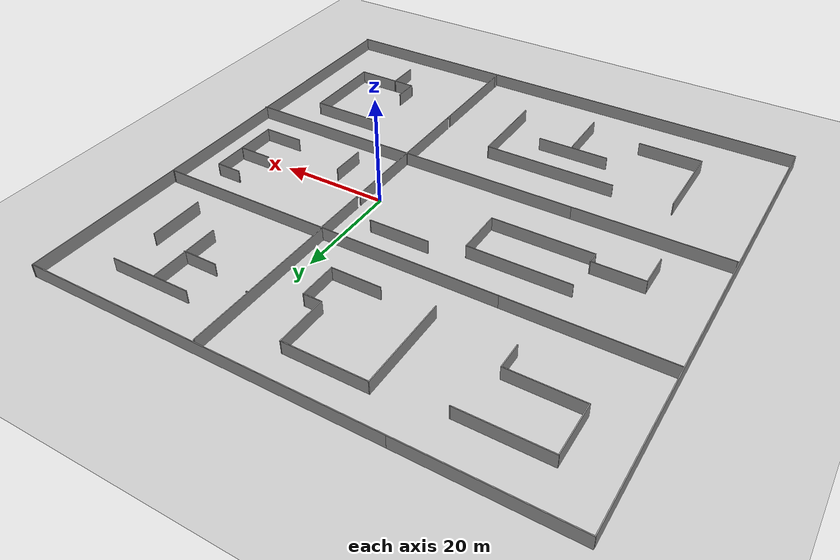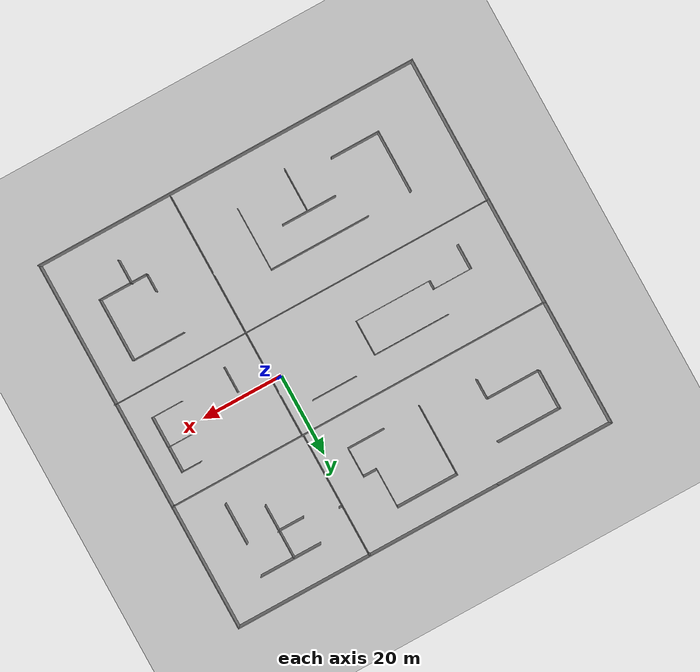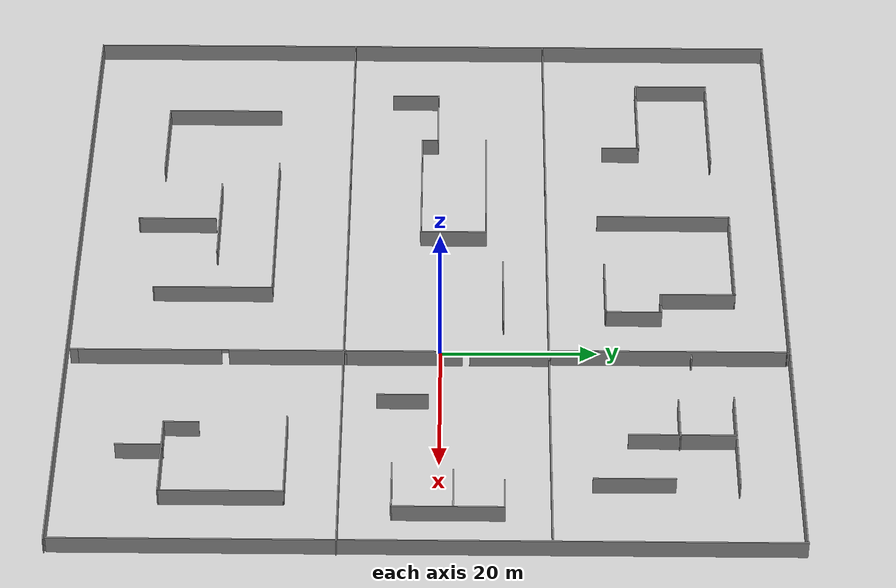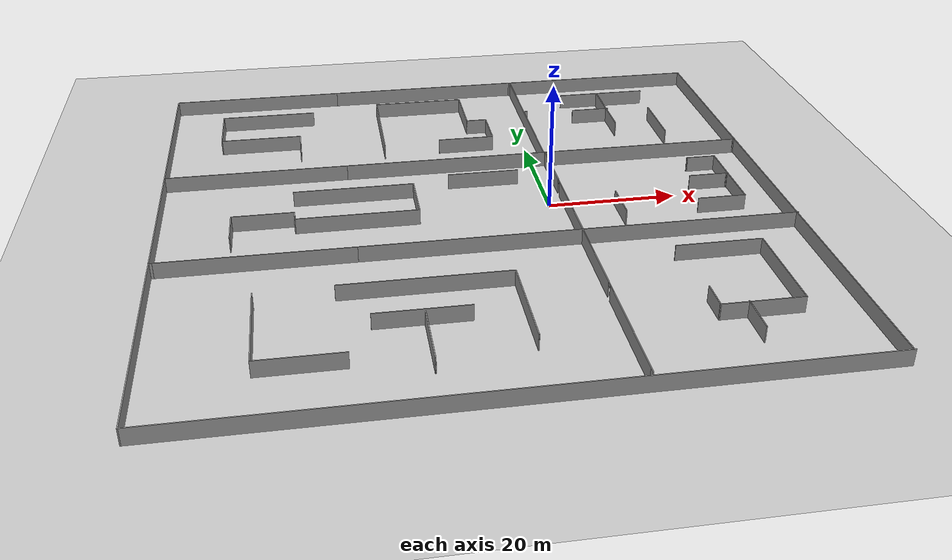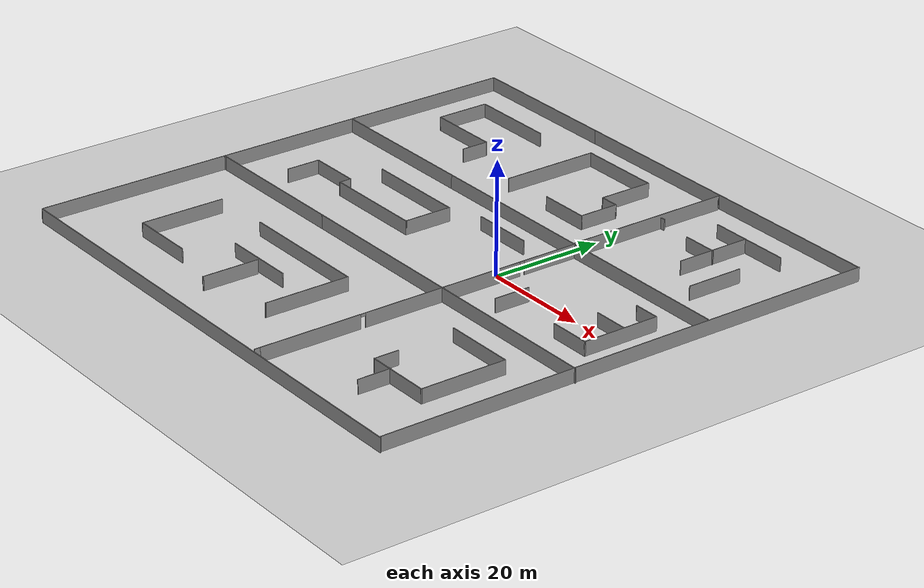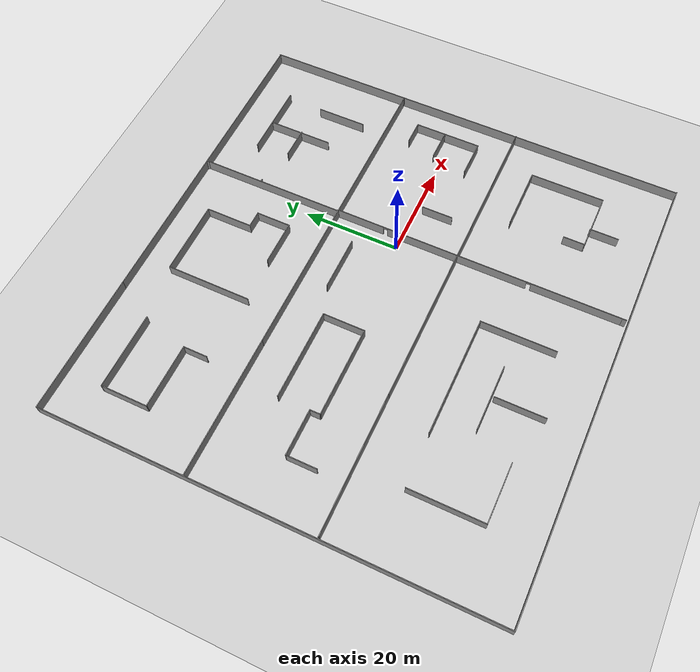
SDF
<sdf version="1.7">
 <world name="default">
  <light name="sun" type="directional">
   <pose>0 0 10 0 -0 0</pose>
   <diffuse>0.8 0.8 0.8 1</diffuse>
   <specular>0.2 0.2 0.2 1</specular>
   <attenuation>
    <range>1000</range>
    <constant>0.9</constant>
    <linear>0.01</linear>
    <quadratic>0.001</quadratic>
   </attenuation>
   <direction>-0.5 0.1 -0.9</direction>
   <spot><inner_angle>0</inner_angle><outer_angle>0</outer_angle><falloff>0</falloff></spot>
  </light>
  <model name="ground_plane">
   <static>1</static>
   <link name="link">
    <collision name="collision">
     <geometry><plane><normal>0 0 1</normal><size>100 100</size></plane></geometry>
     <surface>
      <contact><collide_bitmask>65535</collide_bitmask></contact>
      <friction><ode><mu>100</mu><mu2>50</mu2></ode></friction>
     </surface>
    </collision>
    <visual name="visual">
     <cast_shadows>0</cast_shadows>
     <geometry><plane><normal>0 0 1</normal><size>100 100</size></plane></geometry>
     <material>
      <script><uri>file://media/materials/scripts/gazebo.material</uri><name>Gazebo/Grey</name></script>
     </material>
    </visual>
   </link>
  </model>
  <gravity>0 0 -9.8</gravity>
  <magnetic_field>6e-06 2.3e-05 -4.2e-05</magnetic_field>
  <atmosphere type="adiabatic"/>
  <physics type="ode">
   <max_step_size>0.001</max_step_size>
   <real_time_factor>1</real_time_factor>
   <real_time_update_rate>1000</real_time_update_rate>
  </physics>
  <scene><ambient>0.4 0.4 0.4 1</ambient><background>0.7 0.7 0.7 1</background><shadows>1</shadows></scene>
  <spherical_coordinates>
   <surface_model>EARTH_WGS84</surface_model>
   <latitude_deg>0</latitude_deg>
   <longitude_deg>0</longitude_deg>
   <elevation>0</elevation>
   <heading_deg>0</heading_deg>
  </spherical_coordinates>
  <model name="map.world">
   <pose>-12.0234 -1.49777 0 0 -0 0</pose>
   <link name="Door_2">
    <collision name="Door_2_Collision">
     <geometry><box><size>0.9 0.17 2</size></box></geometry>
     <pose>0 0 1 0 -0 0</pose>
    </collision>
    <visual name="Door_2_Visual">
     <pose>0 0 1 0 -0 0</pose>
     <geometry><box><size>0.9 0.17 2</size></box></geometry>
     <material>
      <script><uri>file://media/materials/scripts/gazebo.material</uri><name>Gazebo/Grey</name></script>
     </material>
    </visual>
    <pose>14.404 33.3614 0 0 -0 0</pose>
   </link>
   <link name="Wall_101">
    <collision name="Wall_101_Collision">
     <geometry><box><size>0.25 0.15 2.5</size></box></geometry>
     <pose>0 0 1.25 0 -0 0</pose>
    </collision>
    <visual name="Wall_101_Visual">
     <pose>0 0 1.25 0 -0 0</pose>
     <geometry><box><size>0.25 0.15 2.5</size></box></geometry>
     <material>
      <script><uri>file://media/materials/scripts/gazebo.material</uri><name>Gazebo/Grey</name></script>
      <ambient>1 1 1 1</ambient>
     </material>
     <meta><layer>0</layer></meta>
    </visual>
    <pose>41.2439 3.27266 0 0 -0 0.261799</pose>
   </link>
   <link name="Wall_102">
    <collision name="Wall_102_Collision">
     <geometry><box><size>6.25 0.15 2.5</size></box></geometry>
     <pose>0 0 1.25 0 -0 0</pose>
    </collision>
    <visual name="Wall_102_Visual">
     <pose>0 0 1.25 0 -0 0</pose>
     <geometry><box><size>6.25 0.15 2.5</size></box></geometry>
     <material>
      <script><uri>file://media/materials/scripts/gazebo.material</uri><name>Gazebo/Grey</name></script>
      <ambient>1 1 1 1</ambient>
     </material>
     <meta><layer>0</layer></meta>
    </visual>
    <pose>38.2422 3.2856 0 0 -0 3.14159</pose>
   </link>
   <link name="Wall_104">
    <collision name="Wall_104_Collision">
     <geometry><box><size>15.25 0.15 2.5</size></box></geometry>
     <pose>0 0 1.25 0 -0 0</pose>
    </collision>
    <visual name="Wall_104_Visual">
     <pose>0 0 1.25 0 -0 0</pose>
     <geometry><box><size>15.25 0.15 2.5</size></box></geometry>
     <material>
      <script><uri>file://media/materials/scripts/gazebo.material</uri><name>Gazebo/Grey</name></script>
      <ambient>1 1 1 1</ambient>
     </material>
     <meta><layer>0</layer></meta>
    </visual>
    <pose>-33.1146 -28.1135 0 0 -0 -1.5708</pose>
   </link>
   <link name="Wall_105">
    <collision name="Wall_105_Collision">
     <geometry><box><size>12 0.15 2.5</size></box></geometry>
     <pose>0 0 1.25 0 -0 0</pose>
    </collision>
    <visual name="Wall_105_Visual">
     <pose>0 0 1.25 0 -0 0</pose>
     <geometry><box><size>12 0.15 2.5</size></box></geometry>
     <material>
      <script><uri>file://media/materials/scripts/gazebo.material</uri><name>Gazebo/Grey</name></script>
      <ambient>1 1 1 1</ambient>
     </material>
     <meta><layer>0</layer></meta>
    </visual>
    <pose>-27.1896 -35.6635 0 0 -0 0</pose>
   </link>
   <link name="Wall_107">
    <collision name="Wall_107_Collision">
     <geometry><box><size>24.75 0.15 2.5</size></box></geometry>
     <pose>0 0 1.25 0 -0 0</pose>
    </collision>
    <visual name="Wall_107_Visual">
     <pose>0 0 1.25 0 -0 0</pose>
     <geometry><box><size>24.75 0.15 2.5</size></box></geometry>
     <material>
      <script><uri>file://media/materials/scripts/gazebo.material</uri><name>Gazebo/Grey</name></script>
      <ambient>1 1 1 1</ambient>
     </material>
     <meta><layer>0</layer></meta>
    </visual>
    <pose>-9.83622 -20.314 0 0 -0 0</pose>
   </link>
   <link name="Wall_108">
    <collision name="Wall_108_Collision">
     <geometry><box><size>15.5 0.15 2.5</size></box></geometry>
     <pose>0 0 1.25 0 -0 0</pose>
    </collision>
    <visual name="Wall_108_Visual">
     <pose>0 0 1.25 0 -0 0</pose>
     <geometry><box><size>15.5 0.15 2.5</size></box></geometry>
     <material>
      <script><uri>file://media/materials/scripts/gazebo.material</uri><name>Gazebo/Grey</name></script>
      <ambient>1 1 1 1</ambient>
     </material>
     <meta><layer>0</layer></meta>
    </visual>
    <pose>2.46378 -27.989 0 0 -0 -1.5708</pose>
   </link>
   <link name="Wall_109">
    <collision name="Wall_109_Collision">
     <geometry><box><size>0.16 0.15 2.5</size></box></geometry>
     <pose>0 0 1.25 0 -0 0</pose>
    </collision>
    <visual name="Wall_109_Visual">
     <pose>0 0 1.25 0 -0 0</pose>
     <geometry><box><size>0.16 0.15 2.5</size></box></geometry>
     <material>
      <script><uri>file://media/materials/scripts/gazebo.material</uri><name>Gazebo/Grey</name></script>
      <ambient>1 1 1 1</ambient>
     </material>
     <meta><layer>0</layer></meta>
    </visual>
    <pose>2.46878 -35.664 0 0 -0 0</pose>
   </link>
   <link name="Wall_111">
    <collision name="Wall_111_Collision">
     <geometry><box><size>13.5 0.15 2.5</size></box></geometry>
     <pose>0 0 1.25 0 -0 0</pose>
    </collision>
    <visual name="Wall_111_Visual">
     <pose>0 0 1.25 0 -0 0</pose>
     <geometry><box><size>13.5 0.15 2.5</size></box></geometry>
     <material>
      <script><uri>file://media/materials/scripts/gazebo.material</uri><name>Gazebo/Grey</name></script>
      <ambient>1 1 1 1</ambient>
     </material>
     <meta><layer>0</layer></meta>
    </visual>
    <pose>-11.2196 -27.7993 0 0 -0 0</pose>
   </link>
   <link name="Wall_113">
    <collision name="Wall_113_Collision">
     <geometry><box><size>10.25 0.15 2.5</size></box></geometry>
     <pose>0 0 1.25 0 -0 0</pose>
    </collision>
    <visual name="Wall_113_Visual">
     <pose>0 0 1.25 0 -0 0</pose>
     <geometry><box><size>10.25 0.15 2.5</size></box></geometry>
     <material>
      <script><uri>file://media/materials/scripts/gazebo.material</uri><name>Gazebo/Grey</name></script>
      <ambient>1 1 1 1</ambient>
     </material>
     <meta><layer>0</layer></meta>
    </visual>
    <pose>-10.9083 -33.3483 0 0 -0 -1.5708</pose>
   </link>
   <link name="Wall_114">
    <collision name="Wall_114_Collision">
     <geometry><box><size>0.16 0.15 2.5</size></box></geometry>
     <pose>0 0 1.25 0 -0 0</pose>
    </collision>
    <visual name="Wall_114_Visual">
     <pose>0 0 1.25 0 -0 0</pose>
     <geometry><box><size>0.16 0.15 2.5</size></box></geometry>
     <material>
      <script><uri>file://media/materials/scripts/gazebo.material</uri><name>Gazebo/Grey</name></script>
      <ambient>1 1 1 1</ambient>
     </material>
     <meta><layer>0</layer></meta>
    </visual>
    <pose>-10.9033 -38.3983 0 0 -0 0</pose>
   </link>
   <link name="Wall_118">
    <collision name="Wall_118_Collision">
     <geometry><box><size>13 0.15 2.5</size></box></geometry>
     <pose>0 0 1.25 0 -0 0</pose>
    </collision>
    <visual name="Wall_118_Visual">
     <pose>0 0 1.25 0 -0 0</pose>
     <geometry><box><size>13 0.15 2.5</size></box></geometry>
     <material>
      <script><uri>file://media/materials/scripts/gazebo.material</uri><name>Gazebo/Grey</name></script>
      <ambient>1 1 1 1</ambient>
     </material>
     <meta><layer>0</layer></meta>
    </visual>
    <pose>32.589 -17.4019 0 0 -0 0</pose>
   </link>
   <link name="Wall_119">
    <collision name="Wall_119_Collision">
     <geometry><box><size>15.5 0.15 2.5</size></box></geometry>
     <pose>0 0 1.25 0 -0 0</pose>
    </collision>
    <visual name="Wall_119_Visual">
     <pose>0 0 1.25 0 -0 0</pose>
     <geometry><box><size>15.5 0.15 2.5</size></box></geometry>
     <material>
      <script><uri>file://media/materials/scripts/gazebo.material</uri><name>Gazebo/Grey</name></script>
      <ambient>1 1 1 1</ambient>
     </material>
     <meta><layer>0</layer></meta>
    </visual>
    <pose>39.014 -25.0769 0 0 -0 -1.5708</pose>
   </link>
   <link name="Wall_12">
    <collision name="Wall_12_Collision">
     <geometry><box><size>65.5 0.15 2.5</size></box></geometry>
     <pose>0 0 1.25 0 -0 0</pose>
    </collision>
    <visual name="Wall_12_Visual">
     <pose>0 0 1.25 0 -0 0</pose>
     <geometry><box><size>65.5 0.15 2.5</size></box></geometry>
     <material>
      <script><uri>file://media/materials/scripts/gazebo.material</uri><name>Gazebo/Grey</name></script>
      <ambient>1 1 1 1</ambient>
     </material>
     <meta><layer>0</layer></meta>
    </visual>
    <pose>14.1184 15.3178 0 0 -0 0</pose>
   </link>
   <link name="Wall_120">
    <collision name="Wall_120_Collision">
     <geometry><box><size>12 0.15 2.5</size></box></geometry>
     <pose>0 0 1.25 0 -0 0</pose>
    </collision>
    <visual name="Wall_120_Visual">
     <pose>0 0 1.25 0 -0 0</pose>
     <geometry><box><size>12 0.15 2.5</size></box></geometry>
     <material>
      <script><uri>file://media/materials/scripts/gazebo.material</uri><name>Gazebo/Grey</name></script>
      <ambient>1 1 1 1</ambient>
     </material>
     <meta><layer>0</layer></meta>
    </visual>
    <pose>33.089 -32.7519 0 0 -0 3.14159</pose>
   </link>
   <link name="Wall_121">
    <collision name="Wall_121_Collision">
     <geometry><box><size>0.16 0.15 2.5</size></box></geometry>
     <pose>0 0 1.25 0 -0 0</pose>
    </collision>
    <visual name="Wall_121_Visual">
     <pose>0 0 1.25 0 -0 0</pose>
     <geometry><box><size>0.16 0.15 2.5</size></box></geometry>
     <material>
      <script><uri>file://media/materials/scripts/gazebo.material</uri><name>Gazebo/Grey</name></script>
      <ambient>1 1 1 1</ambient>
     </material>
     <meta><layer>0</layer></meta>
    </visual>
    <pose>27.169 -32.7519 0 0 -0 0</pose>
   </link>
   <link name="Wall_122">
    <collision name="Wall_122_Collision">
     <geometry><box><size>4.5 0.15 2.5</size></box></geometry>
     <pose>0 0 1.25 0 -0 0</pose>
    </collision>
    <visual name="Wall_122_Visual">
     <pose>0 0 1.25 0 -0 0</pose>
     <geometry><box><size>4.5 0.15 2.5</size></box></geometry>
     <material>
      <script><uri>file://media/materials/scripts/gazebo.material</uri><name>Gazebo/Grey</name></script>
      <ambient>1 1 1 1</ambient>
     </material>
     <meta><layer>0</layer></meta>
    </visual>
    <pose>27.174 -30.5769 0 0 -0 1.5708</pose>
   </link>
   <link name="Wall_124">
    <collision name="Wall_124_Collision">
     <geometry><box><size>6 0.15 2.5</size></box></geometry>
     <pose>0 0 1.25 0 -0 0</pose>
    </collision>
    <visual name="Wall_124_Visual">
     <pose>0 0 1.25 0 -0 0</pose>
     <geometry><box><size>6 0.15 2.5</size></box></geometry>
     <material>
      <script><uri>file://media/materials/scripts/gazebo.material</uri><name>Gazebo/Grey</name></script>
      <ambient>1 1 1 1</ambient>
     </material>
     <meta><layer>0</layer></meta>
    </visual>
    <pose>31.1542 -35.5469 0 0 -0 -1.5708</pose>
   </link>
   <link name="Wall_13">
    <collision name="Wall_13_Collision">
     <geometry><box><size>0.16 0.15 2.5</size></box></geometry>
     <pose>0 0 1.25 0 -0 0</pose>
    </collision>
    <visual name="Wall_13_Visual">
     <pose>0 0 1.25 0 -0 0</pose>
     <geometry><box><size>0.16 0.15 2.5</size></box></geometry>
     <material>
      <script><uri>file://media/materials/scripts/gazebo.material</uri><name>Gazebo/Grey</name></script>
      <ambient>1 1 1 1</ambient>
     </material>
     <meta><layer>0</layer></meta>
    </visual>
    <pose>46.7984 15.3178 0 0 -0 0</pose>
   </link>
   <link name="Wall_14">
    <collision name="Wall_14_Collision">
     <geometry><box><size>0.25 0.15 2.5</size></box></geometry>
     <pose>0 0 1.25 0 -0 0</pose>
    </collision>
    <visual name="Wall_14_Visual">
     <pose>0 0 1.25 0 -0 0</pose>
     <geometry><box><size>0.25 0.15 2.5</size></box></geometry>
     <material>
      <script><uri>file://media/materials/scripts/gazebo.material</uri><name>Gazebo/Grey</name></script>
      <ambient>1 1 1 1</ambient>
     </material>
     <meta><layer>0</layer></meta>
    </visual>
    <pose>46.8517 15.3048 0 0 -0 -0.261799</pose>
   </link>
   <link name="Wall_18">
    <pose>14.2196 2.50651 0 0 -0 1.5708</pose>
    <visual name="Wall_18_Visual_0">
     <pose>-5.58307 0 1.25 0 -0 0</pose>
     <geometry><box><size>14.8339 0.15 2.5</size></box></geometry>
     <material>
      <script><uri>file://media/materials/scripts/gazebo.material</uri><name>Gazebo/Grey</name></script>
      <ambient>1 1 1 1</ambient>
     </material>
     <meta><layer>0</layer></meta>
    </visual>
    <collision name="Wall_18_Collision_0">
     <geometry><box><size>14.8339 0.15 2.5</size></box></geometry>
     <pose>-5.58307 0 1.25 0 -0 0</pose>
    </collision>
    <visual name="Wall_18_Visual_1">
     <pose>7.86693 0 1.25 0 -0 0</pose>
     <geometry><box><size>10.2661 0.15 2.5</size></box></geometry>
     <material>
      <script><uri>file://media/materials/scripts/gazebo.material</uri><name>Gazebo/Grey</name></script>
      <ambient>1 1 1 1</ambient>
     </material>
     <meta><layer>0</layer></meta>
    </visual>
    <collision name="Wall_18_Collision_1">
     <geometry><box><size>10.2661 0.15 2.5</size></box></geometry>
     <pose>7.86693 0 1.25 0 -0 0</pose>
    </collision>
    <visual name="Wall_18_Visual_2">
     <pose>2.28386 0 2.25 0 -0 0</pose>
     <geometry><box><size>0.9 0.15 0.5</size></box></geometry>
     <material>
      <script><uri>file://media/materials/scripts/gazebo.material</uri><name>Gazebo/Grey</name></script>
      <ambient>1 1 1 1</ambient>
     </material>
     <meta><layer>0</layer></meta>
    </visual>
    <collision name="Wall_18_Collision_2">
     <geometry><box><size>0.9 0.15 0.5</size></box></geometry>
     <pose>2.28386 0 2.25 0 -0 0</pose>
    </collision>
   </link>
   <link name="Wall_29">
    <pose>14.2196 -27.4685 0 0 -0 -1.5708</pose>
    <visual name="Wall_29_Visual_0">
     <pose>-9.65738 0 1.25 0 -0 0</pose>
     <geometry><box><size>14.9352 0.15 2.5</size></box></geometry>
     <material>
      <script><uri>file://media/materials/scripts/gazebo.material</uri><name>Gazebo/Grey</name></script>
      <ambient>1 1 1 1</ambient>
     </material>
     <meta><layer>0</layer></meta>
    </visual>
    <collision name="Wall_29_Collision_0">
     <geometry><box><size>14.9352 0.15 2.5</size></box></geometry>
     <pose>-9.65738 0 1.25 0 -0 0</pose>
    </collision>
    <visual name="Wall_29_Visual_1">
     <pose>7.91762 0 1.25 0 -0 0</pose>
     <geometry><box><size>18.4148 0.15 2.5</size></box></geometry>
     <material>
      <script><uri>file://media/materials/scripts/gazebo.material</uri><name>Gazebo/Grey</name></script>
      <ambient>1 1 1 1</ambient>
     </material>
     <meta><layer>0</layer></meta>
    </visual>
    <collision name="Wall_29_Collision_1">
     <geometry><box><size>18.4148 0.15 2.5</size></box></geometry>
     <pose>7.91762 0 1.25 0 -0 0</pose>
    </collision>
    <visual name="Wall_29_Visual_2">
     <pose>-1.73977 0 2.25 0 -0 0</pose>
     <geometry><box><size>0.9 0.15 0.5</size></box></geometry>
     <material>
      <script><uri>file://media/materials/scripts/gazebo.material</uri><name>Gazebo/Grey</name></script>
      <ambient>1 1 1 1</ambient>
     </material>
     <meta><layer>0</layer></meta>
    </visual>
    <collision name="Wall_29_Collision_2">
     <geometry><box><size>0.9 0.15 0.5</size></box></geometry>
     <pose>-1.73977 0 2.25 0 -0 0</pose>
    </collision>
   </link>
   <link name="Wall_30">
    <collision name="Wall_30_Collision">
     <geometry><box><size>1 0.15 2.5</size></box></geometry>
     <pose>0 0 1.25 0 -0 0</pose>
    </collision>
    <visual name="Wall_30_Visual">
     <pose>0 0 1.25 0 -0 0</pose>
     <geometry><box><size>1 0.15 2.5</size></box></geometry>
     <material>
      <script><uri>file://media/materials/scripts/gazebo.material</uri><name>Gazebo/Grey</name></script>
      <ambient>1 1 1 1</ambient>
     </material>
     <meta><layer>0</layer></meta>
    </visual>
    <pose>14.2196 -44.9435 0 0 -0 -1.5708</pose>
   </link>
   <link name="Wall_40">
    <collision name="Wall_40_Collision">
     <geometry><box><size>65.75 0.15 2.5</size></box></geometry>
     <pose>0 0 1.25 0 -0 0</pose>
    </collision>
    <visual name="Wall_40_Visual">
     <pose>0 0 1.25 0 -0 0</pose>
     <geometry><box><size>65.75 0.15 2.5</size></box></geometry>
     <material>
      <script><uri>file://media/materials/scripts/gazebo.material</uri><name>Gazebo/Grey</name></script>
      <ambient>1 1 1 1</ambient>
     </material>
     <meta><layer>0</layer></meta>
    </visual>
    <pose>14.1 45.8919 0 0 -0 3.14159</pose>
   </link>
   <link name="Wall_44">
    <collision name="Wall_44_Collision">
     <geometry><box><size>30 0.15 2.5</size></box></geometry>
     <pose>0 0 1.25 0 -0 0</pose>
    </collision>
    <visual name="Wall_44_Visual">
     <pose>0 0 1.25 0 -0 0</pose>
     <geometry><box><size>30 0.15 2.5</size></box></geometry>
     <material>
      <script><uri>file://media/materials/scripts/gazebo.material</uri><name>Gazebo/Grey</name></script>
      <ambient>1 1 1 1</ambient>
     </material>
     <meta><layer>0</layer></meta>
    </visual>
    <pose>13.9711 30.5377 0 0 -0 1.5708</pose>
   </link>
   <link name="Wall_45">
    <collision name="Wall_45_Collision">
     <geometry><box><size>0.5 0.15 2.5</size></box></geometry>
     <pose>0 0 1.25 0 -0 0</pose>
    </collision>
    <visual name="Wall_45_Visual">
     <pose>0 0 1.25 0 -0 0</pose>
     <geometry><box><size>0.5 0.15 2.5</size></box></geometry>
     <material>
      <script><uri>file://media/materials/scripts/gazebo.material</uri><name>Gazebo/Grey</name></script>
      <ambient>1 1 1 1</ambient>
     </material>
     <meta><layer>0</layer></meta>
    </visual>
    <pose>13.8836 45.6143 0 0 -0 2.0944</pose>
   </link>
   <link name="Wall_47">
    <collision name="Wall_47_Collision">
     <geometry><box><size>91.75 0.15 2.5</size></box></geometry>
     <pose>0 0 1.25 0 -0 0</pose>
    </collision>
    <visual name="Wall_47_Visual">
     <pose>0 0 1.25 0 -0 0</pose>
     <geometry><box><size>91.75 0.15 2.5</size></box></geometry>
     <material>
      <script><uri>file://media/materials/scripts/gazebo.material</uri><name>Gazebo/Grey</name></script>
      <ambient>1 1 1 1</ambient>
     </material>
     <meta><layer>0</layer></meta>
    </visual>
    <pose>47.0875 0.158112 0 0 -0 1.5708</pose>
   </link>
   <link name="Wall_49">
    <collision name="Wall_49_Collision">
     <geometry><box><size>17.5 0.15 2.5</size></box></geometry>
     <pose>0 0 1.25 0 -0 0</pose>
    </collision>
    <visual name="Wall_49_Visual">
     <pose>0 0 1.25 0 -0 0</pose>
     <geometry><box><size>17.5 0.15 2.5</size></box></geometry>
     <material>
      <script><uri>file://media/materials/scripts/gazebo.material</uri><name>Gazebo/Grey</name></script>
      <ambient>1 1 1 1</ambient>
     </material>
     <meta><layer>0</layer></meta>
    </visual>
    <pose>-11.7862 30.7812 0 0 -0 1.5708</pose>
   </link>
   <link name="Wall_5">
    <collision name="Wall_5_Collision">
     <geometry><box><size>66 0.15 2.5</size></box></geometry>
     <pose>0 0 1.25 0 -0 0</pose>
    </collision>
    <visual name="Wall_5_Visual">
     <pose>0 0 1.25 0 -0 0</pose>
     <geometry><box><size>66 0.15 2.5</size></box></geometry>
     <material>
      <script><uri>file://media/materials/scripts/gazebo.material</uri><name>Gazebo/Grey</name></script>
      <ambient>1 1 1 1</ambient>
     </material>
     <meta><layer>0</layer></meta>
    </visual>
    <pose>14.3684 -10.7322 0 0 -0 3.14159</pose>
   </link>
   <link name="Wall_50">
    <collision name="Wall_50_Collision">
     <geometry><box><size>15.25 0.15 2.5</size></box></geometry>
     <pose>0 0 1.25 0 -0 0</pose>
    </collision>
    <visual name="Wall_50_Visual">
     <pose>0 0 1.25 0 -0 0</pose>
     <geometry><box><size>15.25 0.15 2.5</size></box></geometry>
     <material>
      <script><uri>file://media/materials/scripts/gazebo.material</uri><name>Gazebo/Grey</name></script>
      <ambient>1 1 1 1</ambient>
     </material>
     <meta><layer>0</layer></meta>
    </visual>
    <pose>-4.23616 39.4562 0 0 -0 0</pose>
   </link>
   <link name="Wall_51">
    <collision name="Wall_51_Collision">
     <geometry><box><size>9.75 0.15 2.5</size></box></geometry>
     <pose>0 0 1.25 0 -0 0</pose>
    </collision>
    <visual name="Wall_51_Visual">
     <pose>0 0 1.25 0 -0 0</pose>
     <geometry><box><size>9.75 0.15 2.5</size></box></geometry>
     <material>
      <script><uri>file://media/materials/scripts/gazebo.material</uri><name>Gazebo/Grey</name></script>
      <ambient>1 1 1 1</ambient>
     </material>
     <meta><layer>0</layer></meta>
    </visual>
    <pose>3.31384 34.6562 0 0 -0 -1.5708</pose>
   </link>
   <link name="Wall_52">
    <collision name="Wall_52_Collision">
     <geometry><box><size>3.5 0.15 2.5</size></box></geometry>
     <pose>0 0 1.25 0 -0 0</pose>
    </collision>
    <visual name="Wall_52_Visual">
     <pose>0 0 1.25 0 -0 0</pose>
     <geometry><box><size>3.5 0.15 2.5</size></box></geometry>
     <material>
      <script><uri>file://media/materials/scripts/gazebo.material</uri><name>Gazebo/Grey</name></script>
      <ambient>1 1 1 1</ambient>
     </material>
     <meta><layer>0</layer></meta>
    </visual>
    <pose>4.98884 29.8562 0 0 -0 0</pose>
   </link>
   <link name="Wall_53">
    <collision name="Wall_53_Collision">
     <geometry><box><size>7.25 0.15 2.5</size></box></geometry>
     <pose>0 0 1.25 0 -0 0</pose>
    </collision>
    <visual name="Wall_53_Visual">
     <pose>0 0 1.25 0 -0 0</pose>
     <geometry><box><size>7.25 0.15 2.5</size></box></geometry>
     <material>
      <script><uri>file://media/materials/scripts/gazebo.material</uri><name>Gazebo/Grey</name></script>
      <ambient>1 1 1 1</ambient>
     </material>
     <meta><layer>0</layer></meta>
    </visual>
    <pose>6.66384 26.3062 0 0 -0 -1.5708</pose>
   </link>
   <link name="Wall_54">
    <collision name="Wall_54_Collision">
     <geometry><box><size>9.25 0.15 2.5</size></box></geometry>
     <pose>0 0 1.25 0 -0 0</pose>
    </collision>
    <visual name="Wall_54_Visual">
     <pose>0 0 1.25 0 -0 0</pose>
     <geometry><box><size>9.25 0.15 2.5</size></box></geometry>
     <material>
      <script><uri>file://media/materials/scripts/gazebo.material</uri><name>Gazebo/Grey</name></script>
      <ambient>1 1 1 1</ambient>
     </material>
     <meta><layer>0</layer></meta>
    </visual>
    <pose>2.11384 22.7562 0 0 -0 3.14159</pose>
   </link>
   <link name="Wall_56">
    <collision name="Wall_56_Collision">
     <geometry><box><size>15.25 0.15 2.5</size></box></geometry>
     <pose>0 0 1.25 0 -0 0</pose>
    </collision>
    <visual name="Wall_56_Visual">
     <pose>0 0 1.25 0 -0 0</pose>
     <geometry><box><size>15.25 0.15 2.5</size></box></geometry>
     <material>
      <script><uri>file://media/materials/scripts/gazebo.material</uri><name>Gazebo/Grey</name></script>
      <ambient>1 1 1 1</ambient>
     </material>
     <meta><layer>0</layer></meta>
    </visual>
    <pose>29.7461 38.3397 0 0 -0 0</pose>
   </link>
   <link name="Wall_58">
    <collision name="Wall_58_Collision">
     <geometry><box><size>13.5 0.15 2.5</size></box></geometry>
     <pose>0 0 1.25 0 -0 0</pose>
    </collision>
    <visual name="Wall_58_Visual">
     <pose>0 0 1.25 0 -0 0</pose>
     <geometry><box><size>13.5 0.15 2.5</size></box></geometry>
     <material>
      <script><uri>file://media/materials/scripts/gazebo.material</uri><name>Gazebo/Grey</name></script>
      <ambient>1 1 1 1</ambient>
     </material>
     <meta><layer>0</layer></meta>
    </visual>
    <pose>28.906 31.6647 0 0 -0 -1.5708</pose>
   </link>
   <link name="Wall_60">
    <collision name="Wall_60_Collision">
     <geometry><box><size>6.5 0.15 2.5</size></box></geometry>
     <pose>0 0 1.25 0 -0 0</pose>
    </collision>
    <visual name="Wall_60_Visual">
     <pose>0 0 1.25 0 -0 0</pose>
     <geometry><box><size>6.5 0.15 2.5</size></box></geometry>
     <material>
      <script><uri>file://media/materials/scripts/gazebo.material</uri><name>Gazebo/Grey</name></script>
      <ambient>1 1 1 1</ambient>
     </material>
     <meta><layer>0</layer></meta>
    </visual>
    <pose>25.9416 31.3713 0 0 -0 0</pose>
   </link>
   <link name="Wall_62">
    <collision name="Wall_62_Collision">
     <geometry><box><size>10.25 0.15 2.5</size></box></geometry>
     <pose>0 0 1.25 0 -0 0</pose>
    </collision>
    <visual name="Wall_62_Visual">
     <pose>0 0 1.25 0 -0 0</pose>
     <geometry><box><size>10.25 0.15 2.5</size></box></geometry>
     <material>
      <script><uri>file://media/materials/scripts/gazebo.material</uri><name>Gazebo/Grey</name></script>
      <ambient>1 1 1 1</ambient>
     </material>
     <meta><layer>0</layer></meta>
    </visual>
    <pose>36.5067 25.4626 0 0 -0 -1.5708</pose>
   </link>
   <link name="Wall_66">
    <collision name="Wall_66_Collision">
     <geometry><box><size>28.75 0.15 2.5</size></box></geometry>
     <pose>0 0 1.25 0 -0 0</pose>
    </collision>
    <visual name="Wall_66_Visual">
     <pose>0 0 1.25 0 -0 0</pose>
     <geometry><box><size>28.75 0.15 2.5</size></box></geometry>
     <material>
      <script><uri>file://media/materials/scripts/gazebo.material</uri><name>Gazebo/Grey</name></script>
      <ambient>1 1 1 1</ambient>
     </material>
     <meta><layer>0</layer></meta>
    </visual>
    <pose>-33 45.8919 0 0 -0 3.14159</pose>
   </link>
   <link name="Wall_67">
    <collision name="Wall_67_Collision">
     <geometry><box><size>92 0.15 2.5</size></box></geometry>
     <pose>0 0 1.25 0 -0 0</pose>
    </collision>
    <visual name="Wall_67_Visual">
     <pose>0 0 1.25 0 -0 0</pose>
     <geometry><box><size>92 0.15 2.5</size></box></geometry>
     <material>
      <script><uri>file://media/materials/scripts/gazebo.material</uri><name>Gazebo/Grey</name></script>
      <ambient>1 1 1 1</ambient>
     </material>
     <meta><layer>0</layer></meta>
    </visual>
    <pose>-47.3 -0.033115 0 0 -0 -1.5708</pose>
   </link>
   <link name="Wall_68">
    <collision name="Wall_68_Collision">
     <geometry><box><size>94.75 0.15 2.5</size></box></geometry>
     <pose>0 0 1.25 0 -0 0</pose>
    </collision>
    <visual name="Wall_68_Visual">
     <pose>0 0 1.25 0 -0 0</pose>
     <geometry><box><size>94.75 0.15 2.5</size></box></geometry>
     <material>
      <script><uri>file://media/materials/scripts/gazebo.material</uri><name>Gazebo/Grey</name></script>
      <ambient>1 1 1 1</ambient>
     </material>
     <meta><layer>0</layer></meta>
    </visual>
    <pose>2e-06 -45.9581 0 0 -0 0</pose>
   </link>
   <link name="Wall_71">
    <collision name="Wall_71_Collision">
     <geometry><box><size>28.75 0.15 2.5</size></box></geometry>
     <pose>0 0 1.25 0 -0 0</pose>
    </collision>
    <visual name="Wall_71_Visual">
     <pose>0 0 1.25 0 -0 0</pose>
     <geometry><box><size>28.75 0.15 2.5</size></box></geometry>
     <material>
      <script><uri>file://media/materials/scripts/gazebo.material</uri><name>Gazebo/Grey</name></script>
      <ambient>1 1 1 1</ambient>
     </material>
     <meta><layer>0</layer></meta>
    </visual>
    <pose>-32.8566 15.3178 0 0 -0 3.14159</pose>
   </link>
   <link name="Wall_73">
    <collision name="Wall_73_Collision">
     <geometry><box><size>28.5 0.15 2.5</size></box></geometry>
     <pose>0 0 1.25 0 -0 0</pose>
    </collision>
    <visual name="Wall_73_Visual">
     <pose>0 0 1.25 0 -0 0</pose>
     <geometry><box><size>28.5 0.15 2.5</size></box></geometry>
     <material>
      <script><uri>file://media/materials/scripts/gazebo.material</uri><name>Gazebo/Grey</name></script>
      <ambient>1 1 1 1</ambient>
     </material>
     <meta><layer>0</layer></meta>
    </visual>
    <pose>-32.7316 -10.7322 0 0 -0 3.14159</pose>
   </link>
   <link name="Wall_74">
    <collision name="Wall_74_Collision">
     <geometry><box><size>0.5 0.15 2.5</size></box></geometry>
     <pose>0 0 1.25 0 -0 0</pose>
    </collision>
    <visual name="Wall_74_Visual">
     <pose>0 0 1.25 0 -0 0</pose>
     <geometry><box><size>0.5 0.15 2.5</size></box></geometry>
     <material>
      <script><uri>file://media/materials/scripts/gazebo.material</uri><name>Gazebo/Grey</name></script>
      <ambient>1 1 1 1</ambient>
     </material>
     <meta><layer>0</layer></meta>
    </visual>
    <pose>-47.0816 -10.7322 0 0 -0 3.14159</pose>
   </link>
   <link name="Wall_76">
    <collision name="Wall_76_Collision">
     <geometry><box><size>18.75 0.15 2.5</size></box></geometry>
     <pose>0 0 1.25 0 -0 0</pose>
    </collision>
    <visual name="Wall_76_Visual">
     <pose>0 0 1.25 0 -0 0</pose>
     <geometry><box><size>18.75 0.15 2.5</size></box></geometry>
     <material>
      <script><uri>file://media/materials/scripts/gazebo.material</uri><name>Gazebo/Grey</name></script>
      <ambient>1 1 1 1</ambient>
     </material>
     <meta><layer>0</layer></meta>
    </visual>
    <pose>-17.876 7.41367 0 0 -0 0</pose>
   </link>
   <link name="Wall_77">
    <collision name="Wall_77_Collision">
     <geometry><box><size>8.75 0.15 2.5</size></box></geometry>
     <pose>0 0 1.25 0 -0 0</pose>
    </collision>
    <visual name="Wall_77_Visual">
     <pose>0 0 1.25 0 -0 0</pose>
     <geometry><box><size>8.75 0.15 2.5</size></box></geometry>
     <material>
      <script><uri>file://media/materials/scripts/gazebo.material</uri><name>Gazebo/Grey</name></script>
      <ambient>1 1 1 1</ambient>
     </material>
     <meta><layer>0</layer></meta>
    </visual>
    <pose>-8.57597 3.11367 0 0 -0 -1.5708</pose>
   </link>
   <link name="Wall_78">
    <collision name="Wall_78_Collision">
     <geometry><box><size>18.75 0.15 2.5</size></box></geometry>
     <pose>0 0 1.25 0 -0 0</pose>
    </collision>
    <visual name="Wall_78_Visual">
     <pose>0 0 1.25 0 -0 0</pose>
     <geometry><box><size>18.75 0.15 2.5</size></box></geometry>
     <material>
      <script><uri>file://media/materials/scripts/gazebo.material</uri><name>Gazebo/Grey</name></script>
      <ambient>1 1 1 1</ambient>
     </material>
     <meta><layer>0</layer></meta>
    </visual>
    <pose>-17.876 -1.18633 0 0 -0 3.14159</pose>
   </link>
   <link name="Wall_79">
    <collision name="Wall_79_Collision">
     <geometry><box><size>2.25 0.15 2.5</size></box></geometry>
     <pose>0 0 1.25 0 -0 0</pose>
    </collision>
    <visual name="Wall_79_Visual">
     <pose>0 0 1.25 0 -0 0</pose>
     <geometry><box><size>2.25 0.15 2.5</size></box></geometry>
     <material>
      <script><uri>file://media/materials/scripts/gazebo.material</uri><name>Gazebo/Grey</name></script>
      <ambient>1 1 1 1</ambient>
     </material>
     <meta><layer>0</layer></meta>
    </visual>
    <pose>-27.176 -0.136334 0 0 -0 1.5708</pose>
   </link>
   <link name="Wall_80">
    <collision name="Wall_80_Collision">
     <geometry><box><size>9.5 0.15 2.5</size></box></geometry>
     <pose>0 0 1.25 0 -0 0</pose>
    </collision>
    <visual name="Wall_80_Visual">
     <pose>0 0 1.25 0 -0 0</pose>
     <geometry><box><size>9.5 0.15 2.5</size></box></geometry>
     <material>
      <script><uri>file://media/materials/scripts/gazebo.material</uri><name>Gazebo/Grey</name></script>
      <ambient>1 1 1 1</ambient>
     </material>
     <meta><layer>0</layer></meta>
    </visual>
    <pose>-31.851 0.913666 0 0 -0 3.14159</pose>
   </link>
   <link name="Wall_81">
    <collision name="Wall_81_Collision">
     <geometry><box><size>6.25 0.15 2.5</size></box></geometry>
     <pose>0 0 1.25 0 -0 0</pose>
    </collision>
    <visual name="Wall_81_Visual">
     <pose>0 0 1.25 0 -0 0</pose>
     <geometry><box><size>6.25 0.15 2.5</size></box></geometry>
     <material>
      <script><uri>file://media/materials/scripts/gazebo.material</uri><name>Gazebo/Grey</name></script>
      <ambient>1 1 1 1</ambient>
     </material>
     <meta><layer>0</layer></meta>
    </visual>
    <pose>-36.526 -2.13633 0 0 -0 -1.5708</pose>
   </link>
   <link name="Wall_83">
    <collision name="Wall_83_Collision">
     <geometry><box><size>0.16 0.15 2.5</size></box></geometry>
     <pose>0 0 1.25 0 -0 0</pose>
    </collision>
    <visual name="Wall_83_Visual">
     <pose>0 0 1.25 0 -0 0</pose>
     <geometry><box><size>0.16 0.15 2.5</size></box></geometry>
     <material>
      <script><uri>file://media/materials/scripts/gazebo.material</uri><name>Gazebo/Grey</name></script>
      <ambient>1 1 1 1</ambient>
     </material>
     <meta><layer>0</layer></meta>
    </visual>
    <pose>36.8336 9.58331 0 0 -0 0</pose>
   </link>
   <link name="Wall_84">
    <collision name="Wall_84_Collision">
     <geometry><box><size>4.75 0.15 2.5</size></box></geometry>
     <pose>0 0 1.25 0 -0 0</pose>
    </collision>
    <visual name="Wall_84_Visual">
     <pose>0 0 1.25 0 -0 0</pose>
     <geometry><box><size>4.75 0.15 2.5</size></box></geometry>
     <material>
      <script><uri>file://media/materials/scripts/gazebo.material</uri><name>Gazebo/Grey</name></script>
      <ambient>1 1 1 1</ambient>
     </material>
     <meta><layer>0</layer></meta>
    </visual>
    <pose>39.1386 9.58331 0 0 -0 0</pose>
   </link>
   <link name="Wall_85">
    <collision name="Wall_85_Collision">
     <geometry><box><size>14 0.15 2.5</size></box></geometry>
     <pose>0 0 1.25 0 -0 0</pose>
    </collision>
    <visual name="Wall_85_Visual">
     <pose>0 0 1.25 0 -0 0</pose>
     <geometry><box><size>14 0.15 2.5</size></box></geometry>
     <material>
      <script><uri>file://media/materials/scripts/gazebo.material</uri><name>Gazebo/Grey</name></script>
      <ambient>1 1 1 1</ambient>
     </material>
     <meta><layer>0</layer></meta>
    </visual>
    <pose>41.4386 2.65831 0 0 -0 -1.5708</pose>
   </link>
   <link name="Wall_86">
    <collision name="Wall_86_Collision">
     <geometry><box><size>7.5 0.15 2.5</size></box></geometry>
     <pose>0 0 1.25 0 -0 0</pose>
    </collision>
    <visual name="Wall_86_Visual">
     <pose>0 0 1.25 0 -0 0</pose>
     <geometry><box><size>7.5 0.15 2.5</size></box></geometry>
     <material>
      <script><uri>file://media/materials/scripts/gazebo.material</uri><name>Gazebo/Grey</name></script>
      <ambient>1 1 1 1</ambient>
     </material>
     <meta><layer>0</layer></meta>
    </visual>
    <pose>37.7636 -4.26669 0 0 -0 3.14159</pose>
   </link>
   <link name="Wall_88">
    <collision name="Wall_88_Collision">
     <geometry><box><size>0.16 0.15 2.5</size></box></geometry>
     <pose>0 0 1.25 0 -0 0</pose>
    </collision>
    <visual name="Wall_88_Visual">
     <pose>0 0 1.25 0 -0 0</pose>
     <geometry><box><size>0.16 0.15 2.5</size></box></geometry>
     <material>
      <script><uri>file://media/materials/scripts/gazebo.material</uri><name>Gazebo/Grey</name></script>
      <ambient>1 1 1 1</ambient>
     </material>
     <meta><layer>0</layer></meta>
    </visual>
    <pose>8.41123 9.58331 0 0 -0 0</pose>
   </link>
   <link name="Wall_89">
    <collision name="Wall_89_Collision">
     <geometry><box><size>11.25 0.15 2.5</size></box></geometry>
     <pose>0 0 1.25 0 -0 0</pose>
    </collision>
    <visual name="Wall_89_Visual">
     <pose>0 0 1.25 0 -0 0</pose>
     <geometry><box><size>11.25 0.15 2.5</size></box></geometry>
     <material>
      <script><uri>file://media/materials/scripts/gazebo.material</uri><name>Gazebo/Grey</name></script>
      <ambient>1 1 1 1</ambient>
     </material>
     <meta><layer>0</layer></meta>
    </visual>
    <pose>2.86623 9.58331 0 0 -0 3.14159</pose>
   </link>
   <link name="Wall_91">
    <collision name="Wall_91_Collision">
     <geometry><box><size>6.5 0.15 2.5</size></box></geometry>
     <pose>0 0 1.25 0 -0 0</pose>
    </collision>
    <visual name="Wall_91_Visual">
     <pose>0 0 1.25 0 -0 0</pose>
     <geometry><box><size>6.5 0.15 2.5</size></box></geometry>
     <material>
      <script><uri>file://media/materials/scripts/gazebo.material</uri><name>Gazebo/Grey</name></script>
      <ambient>1 1 1 1</ambient>
     </material>
     <meta><layer>0</layer></meta>
    </visual>
    <pose>22.075 -3.13813 0 0 -0 -1.5708</pose>
   </link>
   <link name="Wall_93">
    <collision name="Wall_93_Collision">
     <geometry><box><size>0.16 0.15 2.5</size></box></geometry>
     <pose>0 0 1.25 0 -0 0</pose>
    </collision>
    <visual name="Wall_93_Visual">
     <pose>0 0 1.25 0 -0 0</pose>
     <geometry><box><size>0.16 0.15 2.5</size></box></geometry>
     <material>
      <script><uri>file://media/materials/scripts/gazebo.material</uri><name>Gazebo/Grey</name></script>
      <ambient>1 1 1 1</ambient>
     </material>
     <meta><layer>0</layer></meta>
    </visual>
    <pose>-23.2656 37.5718 0 0 -0 0</pose>
   </link>
   <link name="Wall_94">
    <collision name="Wall_94_Collision">
     <geometry><box><size>15.75 0.15 2.5</size></box></geometry>
     <pose>0 0 1.25 0 -0 0</pose>
    </collision>
    <visual name="Wall_94_Visual">
     <pose>0 0 1.25 0 -0 0</pose>
     <geometry><box><size>15.75 0.15 2.5</size></box></geometry>
     <material>
      <script><uri>file://media/materials/scripts/gazebo.material</uri><name>Gazebo/Grey</name></script>
      <ambient>1 1 1 1</ambient>
     </material>
     <meta><layer>0</layer></meta>
    </visual>
    <pose>-31.0606 37.5717 0 0 -0 3.14159</pose>
   </link>
   <link name="Wall_95">
    <collision name="Wall_95_Collision">
     <geometry><box><size>9.75 0.15 2.5</size></box></geometry>
     <pose>0 0 1.25 0 -0 0</pose>
    </collision>
    <visual name="Wall_95_Visual">
     <pose>0 0 1.25 0 -0 0</pose>
     <geometry><box><size>9.75 0.15 2.5</size></box></geometry>
     <material>
      <script><uri>file://media/materials/scripts/gazebo.material</uri><name>Gazebo/Grey</name></script>
      <ambient>1 1 1 1</ambient>
     </material>
     <meta><layer>0</layer></meta>
    </visual>
    <pose>-38.8606 32.7717 0 0 -0 -1.5708</pose>
   </link>
   <link name="Wall_96">
    <collision name="Wall_96_Collision">
     <geometry><box><size>13.25 0.15 2.5</size></box></geometry>
     <pose>0 0 1.25 0 -0 0</pose>
    </collision>
    <visual name="Wall_96_Visual">
     <pose>0 0 1.25 0 -0 0</pose>
     <geometry><box><size>13.25 0.15 2.5</size></box></geometry>
     <material>
      <script><uri>file://media/materials/scripts/gazebo.material</uri><name>Gazebo/Grey</name></script>
      <ambient>1 1 1 1</ambient>
     </material>
     <meta><layer>0</layer></meta>
    </visual>
    <pose>-32.3106 27.9718 0 0 -0 0</pose>
   </link>
   <link name="Wall_97">
    <collision name="Wall_97_Collision">
     <geometry><box><size>5 0.15 2.5</size></box></geometry>
     <pose>0 0 1.25 0 -0 0</pose>
    </collision>
    <visual name="Wall_97_Visual">
     <pose>0 0 1.25 0 -0 0</pose>
     <geometry><box><size>5 0.15 2.5</size></box></geometry>
     <material>
      <script><uri>file://media/materials/scripts/gazebo.material</uri><name>Gazebo/Grey</name></script>
      <ambient>1 1 1 1</ambient>
     </material>
     <meta><layer>0</layer></meta>
    </visual>
    <pose>-25.7606 25.5467 0 0 -0 -1.5708</pose>
   </link>
   <static>1</static>
  </model>
 </world>
</sdf>
